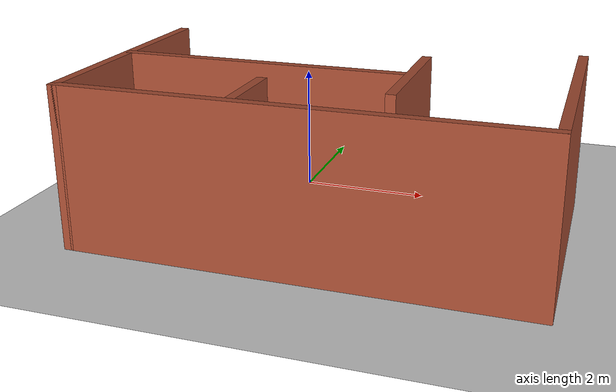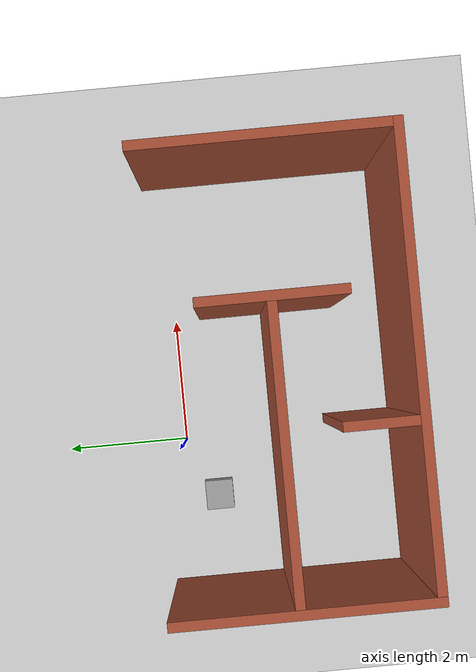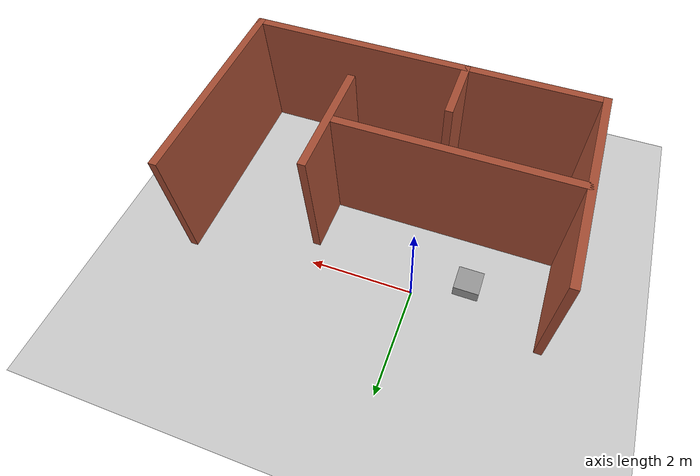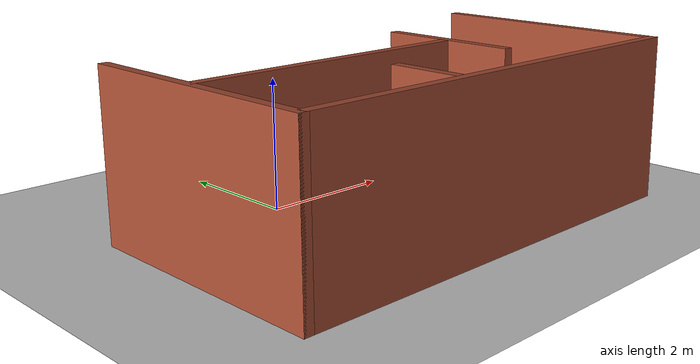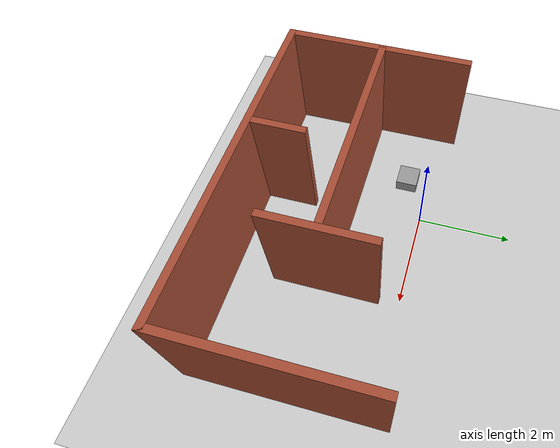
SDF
<sdf version="1.6">
 <world name="default">
  <light name="sun" type="directional">
   <pose>0 0 10 0 -0 0</pose>
   <diffuse>0.8 0.8 0.8 1</diffuse>
   <specular>0.1 0.1 0.1 1</specular>
   <attenuation>
    <range>1000</range>
    <constant>0.9</constant>
    <linear>0.01</linear>
    <quadratic>0.001</quadratic>
   </attenuation>
   <direction>-0.5 0.5 -1</direction>
  </light>
  <model name="ground_plane">
   <static>1</static>
   <link name="link">
    <collision name="collision">
     <geometry><plane><normal>0 0 1</normal><size>100 100</size></plane></geometry>
     <surface><friction><ode><mu>100</mu><mu2>50</mu2></ode></friction></surface>
    </collision>
    <visual name="visual">
     <cast_shadows>0</cast_shadows>
     <geometry><plane><normal>0 0 1</normal><size>100 100</size></plane></geometry>
     <material>
      <script><uri>file://media/materials/scripts/gazebo.material</uri><name>Gazebo/Grey</name></script>
     </material>
    </visual>
   </link>
  </model>
  <gravity>0 0 -9.8</gravity>
  <magnetic_field>6e-06 2.3e-05 -4.2e-05</magnetic_field>
  <atmosphere type="adiabatic"/>
  <physics name="default_physics" default="0" type="ode">
   <max_step_size>0.001</max_step_size>
   <real_time_factor>1</real_time_factor>
   <real_time_update_rate>1000</real_time_update_rate>
  </physics>
  <scene><ambient>0.4 0.4 0.4 1</ambient><background>0.7 0.7 0.7 1</background><shadows>1</shadows></scene>
  <spherical_coordinates>
   <surface_model>EARTH_WGS84</surface_model>
   <latitude_deg>0</latitude_deg>
   <longitude_deg>0</longitude_deg>
   <elevation>0</elevation>
   <heading_deg>0</heading_deg>
  </spherical_coordinates>
  <model name="simple">
   <pose>0.965438 -1.61385 0 0 -0 0</pose>
   <link name="Wall_0">
    <collision name="Wall_0_Collision">
     <geometry><box><size>4 0.15 2.5</size></box></geometry>
     <pose>0 0 1.25 0 -0 0</pose>
    </collision>
    <visual name="Wall_0_Visual">
     <pose>0 0 1.25 0 -0 0</pose>
     <geometry><box><size>4 0.15 2.5</size></box></geometry>
     <material>
      <script><uri>file://media/materials/scripts/gazebo.material</uri><name>Gazebo/Bricks</name></script>
      <ambient>1 1 1 1</ambient>
     </material>
    </visual>
    <pose>-3.425 0 0 0 0 -1.5708</pose>
   </link>
   <link name="Wall_1">
    <collision name="Wall_1_Collision">
     <geometry><box><size>7 0.15 2.5</size></box></geometry>
     <pose>0 0 1.25 0 -0 0</pose>
    </collision>
    <visual name="Wall_1_Visual">
     <pose>0 0 1.25 0 -0 0</pose>
     <geometry><box><size>7 0.15 2.5</size></box></geometry>
     <material>
      <script><uri>file://media/materials/scripts/gazebo.material</uri><name>Gazebo/Bricks</name></script>
      <ambient>1 1 1 1</ambient>
     </material>
    </visual>
    <pose>0 -1.925 0 0 -0 0</pose>
   </link>
   <link name="Wall_2">
    <collision name="Wall_2_Collision">
     <geometry><box><size>4 0.15 2.5</size></box></geometry>
     <pose>0 0 1.25 0 -0 0</pose>
    </collision>
    <visual name="Wall_2_Visual">
     <pose>0 0 1.25 0 -0 0</pose>
     <geometry><box><size>4 0.15 2.5</size></box></geometry>
     <material>
      <script><uri>file://media/materials/scripts/gazebo.material</uri><name>Gazebo/Bricks</name></script>
      <ambient>1 1 1 1</ambient>
     </material>
    </visual>
    <pose>3.425 0 0 0 -0 1.5708</pose>
   </link>
   <link name="Wall_4">
    <collision name="Wall_4_Collision">
     <geometry><box><size>4.5 0.15 2.5</size></box></geometry>
     <pose>0 0 1.25 0 -0 0</pose>
    </collision>
    <visual name="Wall_4_Visual">
     <pose>0 0 1.25 0 -0 0</pose>
     <geometry><box><size>4.5 0.15 2.5</size></box></geometry>
     <material>
      <script><uri>file://media/materials/scripts/gazebo.material</uri><name>Gazebo/Bricks</name></script>
      <ambient>1 1 1 1</ambient>
     </material>
    </visual>
    <pose>-1.2 0.095 0 0 -0 0</pose>
   </link>
   <link name="Wall_7">
    <collision name="Wall_7_Collision">
     <geometry><box><size>1.25 0.15 2.5</size></box></geometry>
     <pose>0 0 1.25 0 -0 0</pose>
    </collision>
    <visual name="Wall_7_Visual">
     <pose>0 0 1.25 0 -0 0</pose>
     <geometry><box><size>1.25 0.15 2.5</size></box></geometry>
     <material>
      <script><uri>file://media/materials/scripts/gazebo.material</uri><name>Gazebo/Bricks</name></script>
      <ambient>1 1 1 1</ambient>
     </material>
    </visual>
    <pose>-0.825 -1.365 0 0 -0 1.5708</pose>
   </link>
   <link name="Wall_9">
    <collision name="Wall_9_Collision">
     <geometry><box><size>2.25 0.15 2.5</size></box></geometry>
     <pose>0 0 1.25 0 -0 0</pose>
    </collision>
    <visual name="Wall_9_Visual">
     <pose>0 0 1.25 0 -0 0</pose>
     <geometry><box><size>2.25 0.15 2.5</size></box></geometry>
     <material>
      <script><uri>file://media/materials/scripts/gazebo.material</uri><name>Gazebo/Bricks</name></script>
      <ambient>1 1 1 1</ambient>
     </material>
    </visual>
    <pose>1.125 0.085 0 0 0 -1.5708</pose>
   </link>
   <static>1</static>
  </model>
  <model name="Box_1">
   <link name="link">
    <inertial>
     <mass>0.01</mass>
     <inertia>
      <ixx>0.00455697</ixx>
      <ixy>0</ixy>
      <ixz>0</ixz>
      <iyy>0.00475558</iyy>
      <iyz>0</iyz>
      <izz>0.00426137</izz>
     </inertia>
    </inertial>
    <visual name="visual">
     <geometry><box><size>0.483208 0.461193 0.514245</size></box></geometry>
     <material>
      <script><name>Gazebo/Grey</name><uri>file://media/materials/scripts/gazebo.material</uri></script>
      <ambient>0.3 0.3 0.3 1</ambient>
      <diffuse>0.7 0.7 0.7 1</diffuse>
      <specular>0.01 0.01 0.01 1</specular>
      <emissive>0 0 0 1</emissive>
     </material>
    </visual>
    <collision name="collision">
     <geometry><box><size>0.483208 0.461193 0.514245</size></box></geometry>
     <surface>
      <friction>
       <ode><mu>1</mu><mu2>1</mu2><fdir1>0 0 0</fdir1><slip1>0</slip1><slip2>0</slip2></ode>
       <torsional>
        <coefficient>1</coefficient>
        <patch_radius>0</patch_radius>
        <surface_radius>0</surface_radius>
        <use_patch_radius>1</use_patch_radius>
        <ode><slip>0</slip></ode>
       </torsional>
      </friction>
      <bounce><restitution_coefficient>0</restitution_coefficient><threshold>1e+06</threshold></bounce>
      <contact>
       <collide_without_contact>0</collide_without_contact>
       <collide_without_contact_bitmask>1</collide_without_contact_bitmask>
       <collide_bitmask>1</collide_bitmask>
       <ode>
        <soft_cfm>0</soft_cfm>
        <soft_erp>0.2</soft_erp>
        <kp>1e+13</kp>
        <kd>1</kd>
        <max_vel>0.01</max_vel>
        <min_depth>0</min_depth>
       </ode>
       <bullet>
        <split_impulse>1</split_impulse>
        <split_impulse_penetration_threshold>-0.01</split_impulse_penetration_threshold>
        <soft_cfm>0</soft_cfm>
        <soft_erp>0.2</soft_erp>
        <kp>1e+13</kp>
        <kd>1</kd>
       </bullet>
      </contact>
     </surface>
    </collision>
   </link>
   <static>0</static>
   <pose>-0.96944 -0.475398 0 0 -0 0</pose>
  </model>
 </world>
</sdf>
